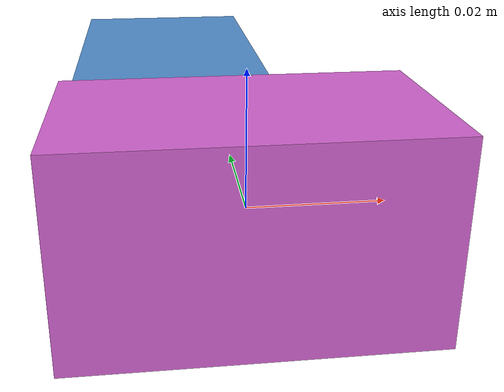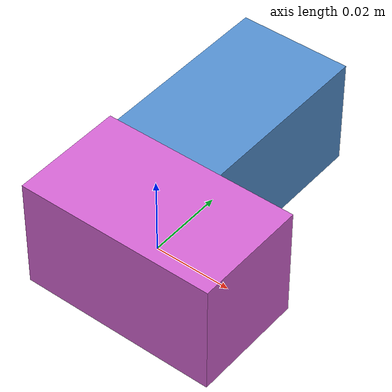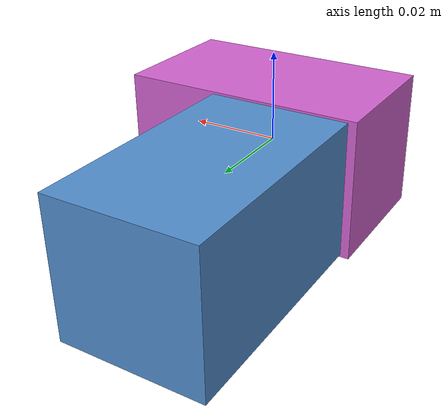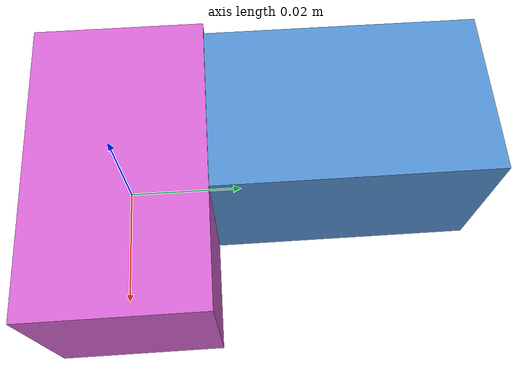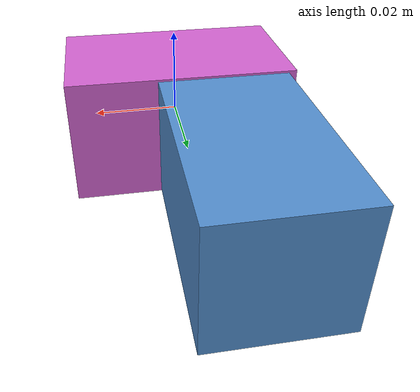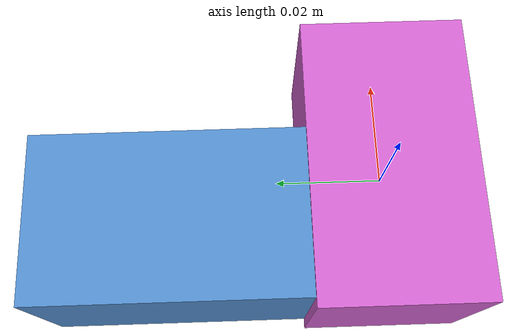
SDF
<sdf version="1.4"><world name="default"><model name="object0"><link name="link1"><pose>0 0 0 0 0 0</pose><inertial><pose>0 0 0 0 0 0</pose><mass>0.0281561991250971</mass><inertia><ixx>4.2234298687645646e-06</ixx><ixy>0</ixy><iyy>8.490725450843725e-06</iyy><ixz>0</ixz><iyz>0</iyz><izz>8.490725450843725e-06</izz></inertia></inertial><visual name="link1_visual"><pose>0 0  0 0 0 0</pose><geometry><box><size>0.05214110949092056 0.03 0.03</size></box></geometry><material><diffuse>0.8283123245000921 0.39233928909092974 0.8210958398816492 1</diffuse></material></visual><collision><pose>0 0  0 0 0 0</pose><geometry><box><size>0.05214110949092056 0.03 0.03</size></box></geometry></collision></link><link name="link2"><pose>-0.009255423889334877 0.035782451846528424 0 0 0 0</pose><inertial><pose>0 0 0 0 0 0</pose><mass>0.030456572993964648</mass><inertia><ixx>1.0208230313620376e-05</ixx><ixy>0</ixy><iyy>4.41874113187437e-06</iyy><ixz>0</ixz><iyz>0</iyz><izz>1.0357975130840703e-05</izz></inertia></inertial><visual name="link2_visual"><pose>0 0  0 0 0 0</pose><geometry><box><size>0.03 0.056401061099934535 0.028999999999999998</size></box></geometry><material><diffuse>0.32369707303471296 0.5595149343930144 0.809481587166033 1</diffuse></material></visual><collision><pose>0 0  0 0 0 0</pose><geometry><box><size>0.03 0.056401061099934535 0.028999999999999998</size></box></geometry></collision></link><joint name="link_joint_0" type="fixed"><parent>link1</parent><child>link2</child><pose>0 0 0 0 0 0</pose><axis><xyz>0 0 1</xyz></axis></joint></model></world></sdf>
